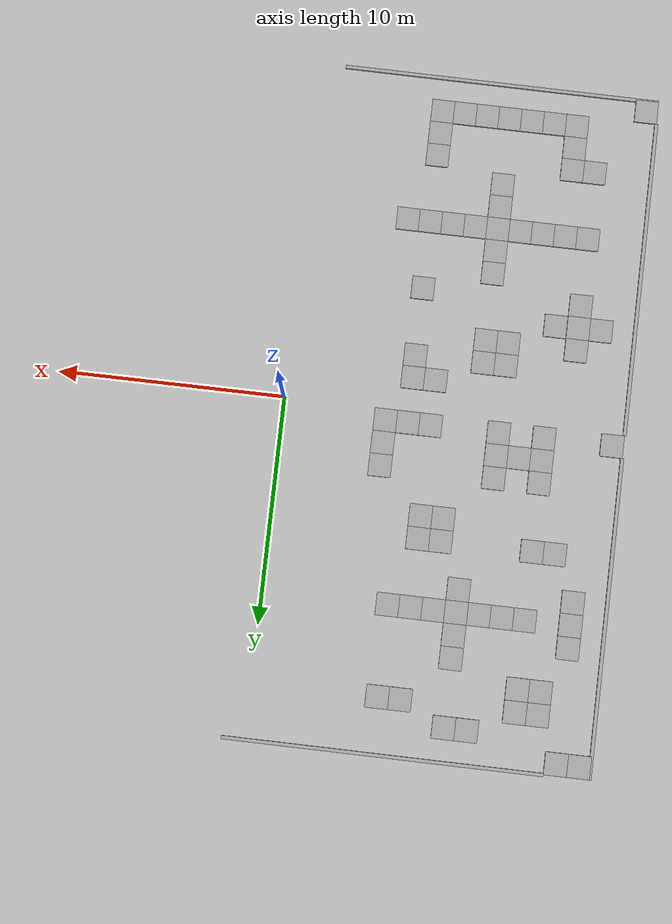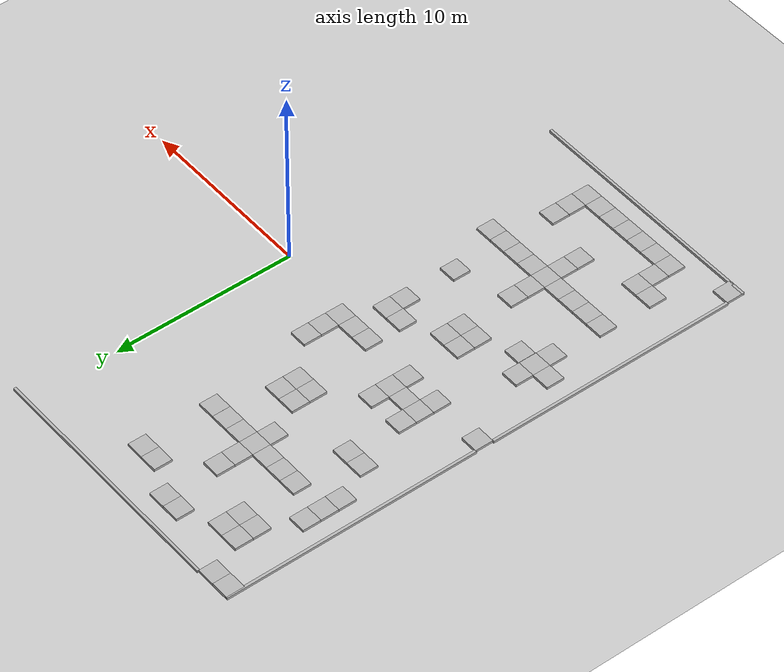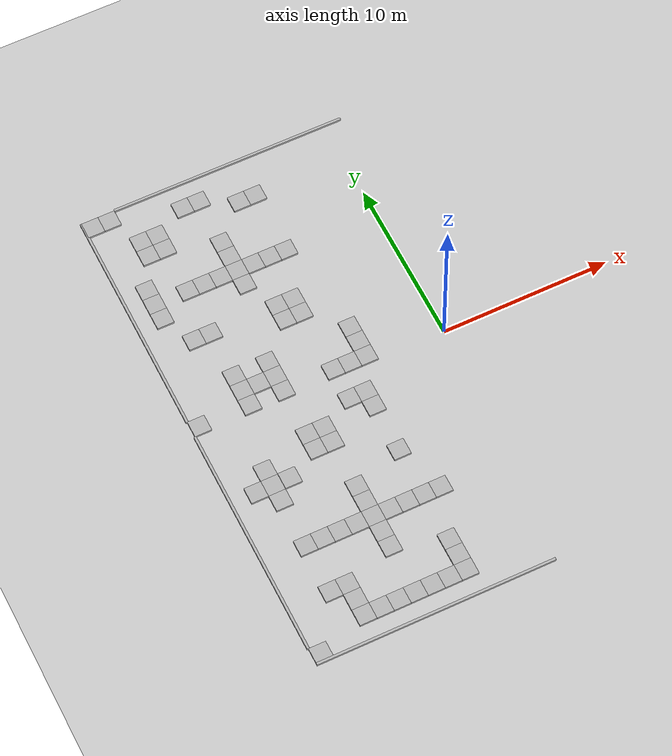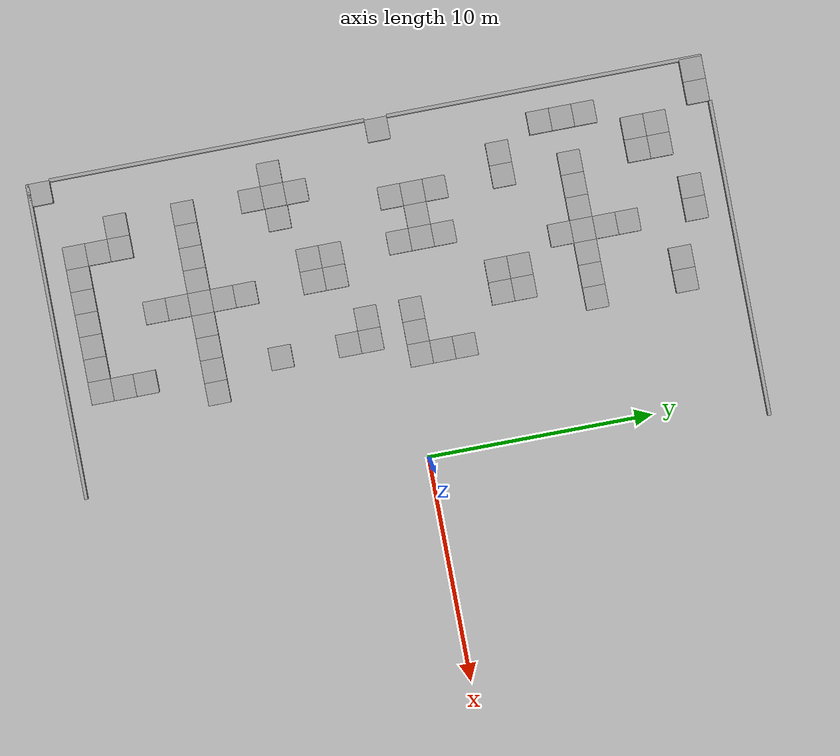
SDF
<sdf version="1.7">
 <world name="default">
  <model name="ground_plane">
   <static>1</static>
   <link name="link">
    <collision name="collision">
     <geometry><plane><normal>0 0 1</normal><size>100 100</size></plane></geometry>
     <surface>
      <contact><collide_bitmask>65535</collide_bitmask></contact>
      <friction><ode><mu>100</mu><mu2>50</mu2></ode></friction>
     </surface>
    </collision>
    <visual name="visual">
     <cast_shadows>0</cast_shadows>
     <geometry><plane><normal>0 0 1</normal><size>100 100</size></plane></geometry>
     <material>
      <script><uri>file://media/materials/scripts/gazebo.material</uri><name>Gazebo/Grey</name></script>
     </material>
    </visual>
   </link>
  </model>
  <model name="concrete_barrier_14m">
   <static>1</static>
   <link name="link">
    <collision name="concrete_barrier_14m_01">
     <pose>-0 0 0.3 0 -0 0</pose>
     <geometry><box><size>14 0.15 0.6</size></box></geometry>
    </collision>
    <visual name="concrete_barrier_14m_visual">
     <geometry><mesh><uri>model://concrete_barrier_14m/meshes/concrete_barrier_14m.dae</uri></mesh></geometry>
    </visual>
   </link>
   <pose>-15 8 -3.1e-05 0 -0 0</pose>
  </model>
  <model name="concrete_barrier_14m_2">
   <static>1</static>
   <link name="link">
    <collision name="concrete_barrier_14m_01">
     <pose>-0 0 0.3 0 -0 0</pose>
     <geometry><box><size>14 0.15 0.6</size></box></geometry>
    </collision>
    <visual name="concrete_barrier_14m_visual">
     <geometry><mesh><uri>model://concrete_barrier_14m/meshes/concrete_barrier_14m.dae</uri></mesh></geometry>
    </visual>
   </link>
   <pose>-15 -7 0 0 -0 0</pose>
  </model>
  <model name="concrete_barrier_14m_5">
   <static>1</static>
   <link name="link">
    <collision name="concrete_barrier_14m_01">
     <pose>-0 0 0.3 0 -0 0</pose>
     <geometry><box><size>14 0.15 0.6</size></box></geometry>
    </collision>
    <visual name="concrete_barrier_14m_visual">
     <geometry><mesh><uri>model://concrete_barrier_14m/meshes/concrete_barrier_14m.dae</uri></mesh></geometry>
    </visual>
   </link>
   <pose>-8 -15 0 0 -0 1.56737</pose>
  </model>
  <model name="concrete_cube_1m_0">
   <static>1</static>
   <link name="link">
    <collision name="concrete_cube_1m">
     <pose>-0 0 0.3 0 -0 0</pose>
     <geometry><box><size>1 1 0.6</size></box></geometry>
    </collision>
    <visual name="concrete_cube_1m_visual">
     <geometry><mesh><uri>model://concrete_cube_1m/meshes/concrete_cube_1m.dae</uri></mesh></geometry>
    </visual>
   </link>
   <pose>-6.5 4.5 0 0 -0 0</pose>
  </model>
  <model name="concrete_cube_1m_3">
   <static>1</static>
   <link name="link">
    <collision name="concrete_cube_1m">
     <pose>-0 0 0.3 0 -0 0</pose>
     <geometry><box><size>1 1 0.6</size></box></geometry>
    </collision>
    <visual name="concrete_cube_1m_visual">
     <geometry><mesh><uri>model://concrete_cube_1m/meshes/concrete_cube_1m.dae</uri></mesh></geometry>
    </visual>
   </link>
   <pose>-4.5 0.5 0 0 -0 0</pose>
  </model>
  <model name="concrete_cube_1m_12">
   <static>1</static>
   <link name="link">
    <collision name="concrete_cube_1m">
     <pose>-0 0 0.3 0 -0 0</pose>
     <geometry><box><size>1 1 0.6</size></box></geometry>
    </collision>
    <visual name="concrete_cube_1m_visual">
     <geometry><mesh><uri>model://concrete_cube_1m/meshes/concrete_cube_1m.dae</uri></mesh></geometry>
    </visual>
   </link>
   <pose>-8.5 -8.5 0 0 -0 0</pose>
  </model>
  <model name="concrete_cube_1m_13">
   <static>1</static>
   <link name="link">
    <collision name="concrete_cube_1m">
     <pose>-0 0 0.3 0 -0 0</pose>
     <geometry><box><size>1 1 0.6</size></box></geometry>
    </collision>
    <visual name="concrete_cube_1m_visual">
     <geometry><mesh><uri>model://concrete_cube_1m/meshes/concrete_cube_1m.dae</uri></mesh></geometry>
    </visual>
   </link>
   <pose>-7.5 -8.5 0 0 -0 0</pose>
  </model>
  <model name="concrete_cube_1m_14">
   <static>1</static>
   <link name="link">
    <collision name="concrete_cube_1m">
     <pose>-0 0 0.3 0 -0 0</pose>
     <geometry><box><size>1 1 0.6</size></box></geometry>
    </collision>
    <visual name="concrete_cube_1m_visual">
     <geometry><mesh><uri>model://concrete_cube_1m/meshes/concrete_cube_1m.dae</uri></mesh></geometry>
    </visual>
   </link>
   <pose>-6.5 -8.5 0 0 -0 0</pose>
  </model>
  <model name="concrete_cube_1m_15">
   <static>1</static>
   <link name="link">
    <collision name="concrete_cube_1m">
     <pose>-0 0 0.3 0 -0 0</pose>
     <geometry><box><size>1 1 0.6</size></box></geometry>
    </collision>
    <visual name="concrete_cube_1m_visual">
     <geometry><mesh><uri>model://concrete_cube_1m/meshes/concrete_cube_1m.dae</uri></mesh></geometry>
    </visual>
   </link>
   <pose>-8.5 -7.5 0 0 -0 0</pose>
  </model>
  <model name="concrete_cube_1m_16">
   <static>1</static>
   <link name="link">
    <collision name="concrete_cube_1m">
     <pose>-0 0 0.3 0 -0 0</pose>
     <geometry><box><size>1 1 0.6</size></box></geometry>
    </collision>
    <visual name="concrete_cube_1m_visual">
     <geometry><mesh><uri>model://concrete_cube_1m/meshes/concrete_cube_1m.dae</uri></mesh></geometry>
    </visual>
   </link>
   <pose>-8.5 -6.5 0 0 -0 0</pose>
  </model>
  <model name="concrete_cube_1m_47">
   <static>1</static>
   <link name="link">
    <collision name="concrete_cube_1m">
     <pose>-0 0 0.3 0 -0 0</pose>
     <geometry><box><size>1 1 0.6</size></box></geometry>
    </collision>
    <visual name="concrete_cube_1m_visual">
     <geometry><mesh><uri>model://concrete_cube_1m/meshes/concrete_cube_1m.dae</uri></mesh></geometry>
    </visual>
   </link>
   <pose>-4.5 1.5 0 0 -0 0</pose>
  </model>
  <model name="concrete_cube_1m_48">
   <static>1</static>
   <link name="link">
    <collision name="concrete_cube_1m">
     <pose>-0 0 0.3 0 -0 0</pose>
     <geometry><box><size>1 1 0.6</size></box></geometry>
    </collision>
    <visual name="concrete_cube_1m_visual">
     <geometry><mesh><uri>model://concrete_cube_1m/meshes/concrete_cube_1m.dae</uri></mesh></geometry>
    </visual>
   </link>
   <pose>-4.5 2.5 0 0 -0 0</pose>
  </model>
  <model name="concrete_cube_1m_49">
   <static>1</static>
   <link name="link">
    <collision name="concrete_cube_1m">
     <pose>-0 0 0.3 0 -0 0</pose>
     <geometry><box><size>1 1 0.6</size></box></geometry>
    </collision>
    <visual name="concrete_cube_1m_visual">
     <geometry><mesh><uri>model://concrete_cube_1m/meshes/concrete_cube_1m.dae</uri></mesh></geometry>
    </visual>
   </link>
   <pose>-5.5 0.5 0 0 -0 0</pose>
  </model>
  <model name="concrete_cube_1m_50">
   <static>1</static>
   <link name="link">
    <collision name="concrete_cube_1m">
     <pose>-0 0 0.3 0 -0 0</pose>
     <geometry><box><size>1 1 0.6</size></box></geometry>
    </collision>
    <visual name="concrete_cube_1m_visual">
     <geometry><mesh><uri>model://concrete_cube_1m/meshes/concrete_cube_1m.dae</uri></mesh></geometry>
    </visual>
   </link>
   <pose>-6.5 0.5 0 0 -0 0</pose>
  </model>
  <model name="concrete_cube_1m_51">
   <static>1</static>
   <link name="link">
    <collision name="concrete_cube_1m">
     <pose>-0 0 0.3 0 -0 0</pose>
     <geometry><box><size>1 1 0.6</size></box></geometry>
    </collision>
    <visual name="concrete_cube_1m_visual">
     <geometry><mesh><uri>model://concrete_cube_1m/meshes/concrete_cube_1m.dae</uri></mesh></geometry>
    </visual>
   </link>
   <pose>-6.5 5.5 0 0 -0 0</pose>
  </model>
  <model name="concrete_cube_1m_52">
   <static>1</static>
   <link name="link">
    <collision name="concrete_cube_1m">
     <pose>-0 0 0.3 0 -0 0</pose>
     <geometry><box><size>1 1 0.6</size></box></geometry>
    </collision>
    <visual name="concrete_cube_1m_visual">
     <geometry><mesh><uri>model://concrete_cube_1m/meshes/concrete_cube_1m.dae</uri></mesh></geometry>
    </visual>
   </link>
   <pose>-7.5 4.5 0 0 -0 0</pose>
  </model>
  <model name="concrete_cube_1m_53">
   <static>1</static>
   <link name="link">
    <collision name="concrete_cube_1m">
     <pose>-0 0 0.3 0 -0 0</pose>
     <geometry><box><size>1 1 0.6</size></box></geometry>
    </collision>
    <visual name="concrete_cube_1m_visual">
     <geometry><mesh><uri>model://concrete_cube_1m/meshes/concrete_cube_1m.dae</uri></mesh></geometry>
    </visual>
   </link>
   <pose>-7.5 5.5 0 0 -0 0</pose>
  </model>
  <model name="concrete_cube_1m_54">
   <static>1</static>
   <link name="link">
    <collision name="concrete_cube_1m">
     <pose>-0 0 0.3 0 -0 0</pose>
     <geometry><box><size>1 1 0.6</size></box></geometry>
    </collision>
    <visual name="concrete_cube_1m_visual">
     <geometry><mesh><uri>model://concrete_cube_1m/meshes/concrete_cube_1m.dae</uri></mesh></geometry>
    </visual>
   </link>
   <pose>-8.5 8.5 0 0 -0 0</pose>
  </model>
  <model name="concrete_cube_1m_55">
   <static>1</static>
   <link name="link">
    <collision name="concrete_cube_1m">
     <pose>-0 0 0.3 0 -0 0</pose>
     <geometry><box><size>1 1 0.6</size></box></geometry>
    </collision>
    <visual name="concrete_cube_1m_visual">
     <geometry><mesh><uri>model://concrete_cube_1m/meshes/concrete_cube_1m.dae</uri></mesh></geometry>
    </visual>
   </link>
   <pose>-8.5 7.5 0 0 -0 0</pose>
  </model>
  <model name="concrete_cube_1m_56">
   <static>1</static>
   <link name="link">
    <collision name="concrete_cube_1m">
     <pose>-0 0 0.3 0 -0 0</pose>
     <geometry><box><size>1 1 0.6</size></box></geometry>
    </collision>
    <visual name="concrete_cube_1m_visual">
     <geometry><mesh><uri>model://concrete_cube_1m/meshes/concrete_cube_1m.dae</uri></mesh></geometry>
    </visual>
   </link>
   <pose>-7.5 8.5 0 0 -0 0</pose>
  </model>
  <model name="concrete_cube_1m_57">
   <static>1</static>
   <link name="link">
    <collision name="concrete_cube_1m">
     <pose>-0 0 0.3 0 -0 0</pose>
     <geometry><box><size>1 1 0.6</size></box></geometry>
    </collision>
    <visual name="concrete_cube_1m_visual">
     <geometry><mesh><uri>model://concrete_cube_1m/meshes/concrete_cube_1m.dae</uri></mesh></geometry>
    </visual>
   </link>
   <pose>-6.50041 8.5 0 0 -0 0</pose>
  </model>
  <model name="concrete_cube_1m_58">
   <static>1</static>
   <link name="link">
    <collision name="concrete_cube_1m">
     <pose>-0 0 0.3 0 -0 0</pose>
     <geometry><box><size>1 1 0.6</size></box></geometry>
    </collision>
    <visual name="concrete_cube_1m_visual">
     <geometry><mesh><uri>model://concrete_cube_1m/meshes/concrete_cube_1m.dae</uri></mesh></geometry>
    </visual>
   </link>
   <pose>-5.5 8.5 0 0 -0 0</pose>
  </model>
  <model name="concrete_cube_1m_60">
   <static>1</static>
   <link name="link">
    <collision name="concrete_cube_1m">
     <pose>-0 0 0.3 0 -0 0</pose>
     <geometry><box><size>1 1 0.6</size></box></geometry>
    </collision>
    <visual name="concrete_cube_1m_visual">
     <geometry><mesh><uri>model://concrete_cube_1m/meshes/concrete_cube_1m.dae</uri></mesh></geometry>
    </visual>
   </link>
   <pose>-9.5 1.5 0 0 -0 0</pose>
  </model>
  <model name="concrete_cube_1m_61">
   <static>1</static>
   <link name="link">
    <collision name="concrete_cube_1m">
     <pose>-0 0 0.3 0 -0 0</pose>
     <geometry><box><size>1 1 0.6</size></box></geometry>
    </collision>
    <visual name="concrete_cube_1m_visual">
     <geometry><mesh><uri>model://concrete_cube_1m/meshes/concrete_cube_1m.dae</uri></mesh></geometry>
    </visual>
   </link>
   <pose>-9.5 2.5 0 0 -0 0</pose>
  </model>
  <model name="concrete_cube_1m_62">
   <static>1</static>
   <link name="link">
    <collision name="concrete_cube_1m">
     <pose>-0 0 0.3 0 -0 0</pose>
     <geometry><box><size>1 1 0.6</size></box></geometry>
    </collision>
    <visual name="concrete_cube_1m_visual">
     <geometry><mesh><uri>model://concrete_cube_1m/meshes/concrete_cube_1m.dae</uri></mesh></geometry>
    </visual>
   </link>
   <pose>-9.5 0.5 0 0 -0 0</pose>
  </model>
  <model name="concrete_cube_1m_88">
   <static>1</static>
   <link name="link">
    <collision name="concrete_cube_1m">
     <pose>-0 0 0.3 0 -0 0</pose>
     <geometry><box><size>1 1 0.6</size></box></geometry>
    </collision>
    <visual name="concrete_cube_1m_visual">
     <geometry><mesh><uri>model://concrete_cube_1m/meshes/concrete_cube_1m.dae</uri></mesh></geometry>
    </visual>
   </link>
   <pose>-5.5 -8.5 0 0 -0 0</pose>
  </model>
  <model name="concrete_cube_1m_89">
   <static>1</static>
   <link name="link">
    <collision name="concrete_cube_1m">
     <pose>-0 0 0.3 0 -0 0</pose>
     <geometry><box><size>1 1 0.6</size></box></geometry>
    </collision>
    <visual name="concrete_cube_1m_visual">
     <geometry><mesh><uri>model://concrete_cube_1m/meshes/concrete_cube_1m.dae</uri></mesh></geometry>
    </visual>
   </link>
   <pose>-4.5 -8.5 0 0 -0 0</pose>
  </model>
  <model name="concrete_cube_1m_92">
   <static>1</static>
   <link name="link">
    <collision name="concrete_cube_1m">
     <pose>-0 0 0.3 0 -0 0</pose>
     <geometry><box><size>1 1 0.6</size></box></geometry>
    </collision>
    <visual name="concrete_cube_1m_visual">
     <geometry><mesh><uri>model://concrete_cube_1m/meshes/concrete_cube_1m.dae</uri></mesh></geometry>
    </visual>
   </link>
   <pose>-9.5 -3.5 0 0 -0 0</pose>
  </model>
  <model name="concrete_cube_1m_93">
   <static>1</static>
   <link name="link">
    <collision name="concrete_cube_1m">
     <pose>-0 0 0.3 0 -0 0</pose>
     <geometry><box><size>1 1 0.6</size></box></geometry>
    </collision>
    <visual name="concrete_cube_1m_visual">
     <geometry><mesh><uri>model://concrete_cube_1m/meshes/concrete_cube_1m.dae</uri></mesh></geometry>
    </visual>
   </link>
   <pose>-8.5 -3.5 0 0 -0 0</pose>
  </model>
  <model name="concrete_cube_1m_94">
   <static>1</static>
   <link name="link">
    <collision name="concrete_cube_1m">
     <pose>-0 0 0.3 0 -0 0</pose>
     <geometry><box><size>1 1 0.6</size></box></geometry>
    </collision>
    <visual name="concrete_cube_1m_visual">
     <geometry><mesh><uri>model://concrete_cube_1m/meshes/concrete_cube_1m.dae</uri></mesh></geometry>
    </visual>
   </link>
   <pose>-8.5 -2.5 0 0 -0 0</pose>
  </model>
  <model name="concrete_cube_1m_95">
   <static>1</static>
   <link name="link">
    <collision name="concrete_cube_1m">
     <pose>-0 0 0.3 0 -0 0</pose>
     <geometry><box><size>1 1 0.6</size></box></geometry>
    </collision>
    <visual name="concrete_cube_1m_visual">
     <geometry><mesh><uri>model://concrete_cube_1m/meshes/concrete_cube_1m.dae</uri></mesh></geometry>
    </visual>
   </link>
   <pose>-9.5 -2.5 0 0 -0 0</pose>
  </model>
  <model name="concrete_cube_1m_96">
   <static>1</static>
   <link name="link">
    <collision name="concrete_cube_1m">
     <pose>-0 0 0.3 0 -0 0</pose>
     <geometry><box><size>1 1 0.6</size></box></geometry>
    </collision>
    <visual name="concrete_cube_1m_visual">
     <geometry><mesh><uri>model://concrete_cube_1m/meshes/concrete_cube_1m.dae</uri></mesh></geometry>
    </visual>
   </link>
   <pose>-5.5 -5.5 0 0 -0 0</pose>
  </model>
  <model name="concrete_cube_1m_100">
   <static>1</static>
   <link name="link">
    <collision name="concrete_cube_1m">
     <pose>-0 0 0.3 0 -0 0</pose>
     <geometry><box><size>1 1 0.6</size></box></geometry>
    </collision>
    <visual name="concrete_cube_1m_visual">
     <geometry><mesh><uri>model://concrete_cube_1m/meshes/concrete_cube_1m.dae</uri></mesh></geometry>
    </visual>
   </link>
   <pose>-6.5 -1.5 0 0 -0 0</pose>
  </model>
  <model name="concrete_cube_1m_101">
   <static>1</static>
   <link name="link">
    <collision name="concrete_cube_1m">
     <pose>-0 0 0.3 0 -0 0</pose>
     <geometry><box><size>1 1 0.6</size></box></geometry>
    </collision>
    <visual name="concrete_cube_1m_visual">
     <geometry><mesh><uri>model://concrete_cube_1m/meshes/concrete_cube_1m.dae</uri></mesh></geometry>
    </visual>
   </link>
   <pose>-5.5 -1.5 0 0 -0 0</pose>
  </model>
  <model name="concrete_cube_1m_102">
   <static>1</static>
   <link name="link">
    <collision name="concrete_cube_1m">
     <pose>-0 0 0.3 0 -0 0</pose>
     <geometry><box><size>1 1 0.6</size></box></geometry>
    </collision>
    <visual name="concrete_cube_1m_visual">
     <geometry><mesh><uri>model://concrete_cube_1m/meshes/concrete_cube_1m.dae</uri></mesh></geometry>
    </visual>
   </link>
   <pose>-5.5 -2.5 0 0 -0 0</pose>
  </model>
  <model name="concrete_barrier_14m_1">
   <static>1</static>
   <link name="link">
    <collision name="concrete_barrier_14m_01">
     <pose>-0 0 0.3 0 -0 0</pose>
     <geometry><box><size>14 0.15 0.6</size></box></geometry>
    </collision>
    <visual name="concrete_barrier_14m_visual">
     <geometry><mesh><uri>model://concrete_barrier_14m/meshes/concrete_barrier_14m.dae</uri></mesh></geometry>
    </visual>
   </link>
   <pose>-6 15 0 0 0 -1.57299</pose>
  </model>
  <model name="concrete_cube_1m_109">
   <static>1</static>
   <link name="link">
    <collision name="concrete_cube_1m">
     <pose>-0 0 0.3 0 -0 0</pose>
     <geometry><box><size>1 1 0.6</size></box></geometry>
    </collision>
    <visual name="concrete_cube_1m_visual">
     <geometry><mesh><uri>model://concrete_cube_1m/meshes/concrete_cube_1m.dae</uri></mesh></geometry>
    </visual>
   </link>
   <pose>-14.5 -14.5 0 0 -0 0</pose>
  </model>
  <model name="concrete_cube_1m_110">
   <static>1</static>
   <link name="link">
    <collision name="concrete_cube_1m">
     <pose>-0 0 0.3 0 -0 0</pose>
     <geometry><box><size>1 1 0.6</size></box></geometry>
    </collision>
    <visual name="concrete_cube_1m_visual">
     <geometry><mesh><uri>model://concrete_cube_1m/meshes/concrete_cube_1m.dae</uri></mesh></geometry>
    </visual>
   </link>
   <pose>-14.5 0.5 0 0 -0 0</pose>
  </model>
  <model name="concrete_cube_1m_111">
   <static>1</static>
   <link name="link">
    <collision name="concrete_cube_1m">
     <pose>-0 0 0.3 0 -0 0</pose>
     <geometry><box><size>1 1 0.6</size></box></geometry>
    </collision>
    <visual name="concrete_cube_1m_visual">
     <geometry><mesh><uri>model://concrete_cube_1m/meshes/concrete_cube_1m.dae</uri></mesh></geometry>
    </visual>
   </link>
   <pose>-14.5 14.5 0 0 -0 0</pose>
  </model>
  <model name="concrete_cube_1m_112">
   <static>1</static>
   <link name="link">
    <collision name="concrete_cube_1m">
     <pose>-0 0 0.3 0 -0 0</pose>
     <geometry><box><size>1 1 0.6</size></box></geometry>
    </collision>
    <visual name="concrete_cube_1m_visual">
     <geometry><mesh><uri>model://concrete_cube_1m/meshes/concrete_cube_1m.dae</uri></mesh></geometry>
    </visual>
   </link>
   <pose>-13.5 14.5 0 0 -0 0</pose>
  </model>
  <model name="concrete_cube_1m_152">
   <static>1</static>
   <link name="link">
    <collision name="concrete_cube_1m">
     <pose>-0 0 0.3 0 -0 0</pose>
     <geometry><box><size>1 1 0.6</size></box></geometry>
    </collision>
    <visual name="concrete_cube_1m_visual">
     <geometry><mesh><uri>model://concrete_cube_1m/meshes/concrete_cube_1m.dae</uri></mesh></geometry>
    </visual>
   </link>
   <pose>-10.5 1.5 0 0 -0 0</pose>
  </model>
  <model name="concrete_cube_1m_153">
   <static>1</static>
   <link name="link">
    <collision name="concrete_cube_1m">
     <pose>-0 0 0.3 0 -0 0</pose>
     <geometry><box><size>1 1 0.6</size></box></geometry>
    </collision>
    <visual name="concrete_cube_1m_visual">
     <geometry><mesh><uri>model://concrete_cube_1m/meshes/concrete_cube_1m.dae</uri></mesh></geometry>
    </visual>
   </link>
   <pose>-11.5 1.5 0 0 -0 0</pose>
  </model>
  <model name="concrete_cube_1m_154">
   <static>1</static>
   <link name="link">
    <collision name="concrete_cube_1m">
     <pose>-0 0 0.3 0 -0 0</pose>
     <geometry><box><size>1 1 0.6</size></box></geometry>
    </collision>
    <visual name="concrete_cube_1m_visual">
     <geometry><mesh><uri>model://concrete_cube_1m/meshes/concrete_cube_1m.dae</uri></mesh></geometry>
    </visual>
   </link>
   <pose>-11.5 2.5 0 0 -0 0</pose>
  </model>
  <model name="concrete_cube_1m_155">
   <static>1</static>
   <link name="link">
    <collision name="concrete_cube_1m">
     <pose>-0 0 0.3 0 -0 0</pose>
     <geometry><box><size>1 1 0.6</size></box></geometry>
    </collision>
    <visual name="concrete_cube_1m_visual">
     <geometry><mesh><uri>model://concrete_cube_1m/meshes/concrete_cube_1m.dae</uri></mesh></geometry>
    </visual>
   </link>
   <pose>-11.5 5.5 0 0 -0 0</pose>
  </model>
  <model name="concrete_cube_1m_156">
   <static>1</static>
   <link name="link">
    <collision name="concrete_cube_1m">
     <pose>-0 0 0.3 0 -0 0</pose>
     <geometry><box><size>1 1 0.6</size></box></geometry>
    </collision>
    <visual name="concrete_cube_1m_visual">
     <geometry><mesh><uri>model://concrete_cube_1m/meshes/concrete_cube_1m.dae</uri></mesh></geometry>
    </visual>
   </link>
   <pose>-8.5 9.5 0 0 -0 0</pose>
  </model>
  <model name="concrete_cube_1m_157">
   <static>1</static>
   <link name="link">
    <collision name="concrete_cube_1m">
     <pose>-0 0 0.3 0 -0 0</pose>
     <geometry><box><size>1 1 0.6</size></box></geometry>
    </collision>
    <visual name="concrete_cube_1m_visual">
     <geometry><mesh><uri>model://concrete_cube_1m/meshes/concrete_cube_1m.dae</uri></mesh></geometry>
    </visual>
   </link>
   <pose>-9.5 8.5 0 0 -0 0</pose>
  </model>
  <model name="concrete_cube_1m_158">
   <static>1</static>
   <link name="link">
    <collision name="concrete_cube_1m">
     <pose>-0 0 0.3 0 -0 0</pose>
     <geometry><box><size>1 1 0.6</size></box></geometry>
    </collision>
    <visual name="concrete_cube_1m_visual">
     <geometry><mesh><uri>model://concrete_cube_1m/meshes/concrete_cube_1m.dae</uri></mesh></geometry>
    </visual>
   </link>
   <pose>-10.5 8.5 0 0 -0 0</pose>
  </model>
  <model name="concrete_cube_1m_159">
   <static>1</static>
   <link name="link">
    <collision name="concrete_cube_1m">
     <pose>-0 0 0.3 0 -0 0</pose>
     <geometry><box><size>1 1 0.6</size></box></geometry>
    </collision>
    <visual name="concrete_cube_1m_visual">
     <geometry><mesh><uri>model://concrete_cube_1m/meshes/concrete_cube_1m.dae</uri></mesh></geometry>
    </visual>
   </link>
   <pose>-11.5 8.5 0 0 -0 0</pose>
  </model>
  <model name="concrete_cube_1m_167">
   <static>1</static>
   <link name="link">
    <collision name="concrete_cube_1m">
     <pose>-0 0 0.3 0 -0 0</pose>
     <geometry><box><size>1 1 0.6</size></box></geometry>
    </collision>
    <visual name="concrete_cube_1m_visual">
     <geometry><mesh><uri>model://concrete_cube_1m/meshes/concrete_cube_1m.dae</uri></mesh></geometry>
    </visual>
   </link>
   <pose>-5.5 12.5 0 0 -0 0</pose>
  </model>
  <model name="concrete_cube_1m_168">
   <static>1</static>
   <link name="link">
    <collision name="concrete_cube_1m">
     <pose>-0 0 0.3 0 -0 0</pose>
     <geometry><box><size>1 1 0.6</size></box></geometry>
    </collision>
    <visual name="concrete_cube_1m_visual">
     <geometry><mesh><uri>model://concrete_cube_1m/meshes/concrete_cube_1m.dae</uri></mesh></geometry>
    </visual>
   </link>
   <pose>-6.5 12.5 0 0 -0 0</pose>
  </model>
  <model name="concrete_cube_1m_169">
   <static>1</static>
   <link name="link">
    <collision name="concrete_cube_1m">
     <pose>-0 0 0.3 0 -0 0</pose>
     <geometry><box><size>1 1 0.6</size></box></geometry>
    </collision>
    <visual name="concrete_cube_1m_visual">
     <geometry><mesh><uri>model://concrete_cube_1m/meshes/concrete_cube_1m.dae</uri></mesh></geometry>
    </visual>
   </link>
   <pose>-12.5 5.5 0 0 -0 0</pose>
  </model>
  <model name="concrete_cube_1m_170">
   <static>1</static>
   <link name="link">
    <collision name="concrete_cube_1m">
     <pose>-0 0 0.3 0 -0 0</pose>
     <geometry><box><size>1 1 0.6</size></box></geometry>
    </collision>
    <visual name="concrete_cube_1m_visual">
     <geometry><mesh><uri>model://concrete_cube_1m/meshes/concrete_cube_1m.dae</uri></mesh></geometry>
    </visual>
   </link>
   <pose>-11.5 11.5 0 0 -0 0</pose>
  </model>
  <model name="concrete_cube_1m_171">
   <static>1</static>
   <link name="link">
    <collision name="concrete_cube_1m">
     <pose>-0 0 0.3 0 -0 0</pose>
     <geometry><box><size>1 1 0.6</size></box></geometry>
    </collision>
    <visual name="concrete_cube_1m_visual">
     <geometry><mesh><uri>model://concrete_cube_1m/meshes/concrete_cube_1m.dae</uri></mesh></geometry>
    </visual>
   </link>
   <pose>-11.5 12.5 0 0 -0 0</pose>
  </model>
  <model name="concrete_cube_1m_172">
   <static>1</static>
   <link name="link">
    <collision name="concrete_cube_1m">
     <pose>-0 0 0.3 0 -0 0</pose>
     <geometry><box><size>1 1 0.6</size></box></geometry>
    </collision>
    <visual name="concrete_cube_1m_visual">
     <geometry><mesh><uri>model://concrete_cube_1m/meshes/concrete_cube_1m.dae</uri></mesh></geometry>
    </visual>
   </link>
   <pose>-12.5 11.5 0 0 -0 0</pose>
  </model>
  <model name="concrete_cube_1m_173">
   <static>1</static>
   <link name="link">
    <collision name="concrete_cube_1m">
     <pose>-0 0 0.3 0 -0 0</pose>
     <geometry><box><size>1 1 0.6</size></box></geometry>
    </collision>
    <visual name="concrete_cube_1m_visual">
     <geometry><mesh><uri>model://concrete_cube_1m/meshes/concrete_cube_1m.dae</uri></mesh></geometry>
    </visual>
   </link>
   <pose>-12.5 12.5 0 0 -0 0</pose>
  </model>
  <model name="concrete_cube_1m_174">
   <static>1</static>
   <link name="link">
    <collision name="concrete_cube_1m">
     <pose>-0 0 0.3 0 -0 0</pose>
     <geometry><box><size>1 1 0.6</size></box></geometry>
    </collision>
    <visual name="concrete_cube_1m_visual">
     <geometry><mesh><uri>model://concrete_cube_1m/meshes/concrete_cube_1m.dae</uri></mesh></geometry>
    </visual>
   </link>
   <pose>-13.5 7.5 0 0 -0 0</pose>
  </model>
  <model name="concrete_cube_1m_175">
   <static>1</static>
   <link name="link">
    <collision name="concrete_cube_1m">
     <pose>-0 0 0.3 0 -0 0</pose>
     <geometry><box><size>1 1 0.6</size></box></geometry>
    </collision>
    <visual name="concrete_cube_1m_visual">
     <geometry><mesh><uri>model://concrete_cube_1m/meshes/concrete_cube_1m.dae</uri></mesh></geometry>
    </visual>
   </link>
   <pose>-13.5 8.5 0 0 -0 0</pose>
  </model>
  <model name="concrete_cube_1m_176">
   <static>1</static>
   <link name="link">
    <collision name="concrete_cube_1m">
     <pose>-0 0 0.3 0 -0 0</pose>
     <geometry><box><size>1 1 0.6</size></box></geometry>
    </collision>
    <visual name="concrete_cube_1m_visual">
     <geometry><mesh><uri>model://concrete_cube_1m/meshes/concrete_cube_1m.dae</uri></mesh></geometry>
    </visual>
   </link>
   <pose>-13.5 9.5 0 0 -0 0</pose>
  </model>
  <model name="concrete_cube_1m_177">
   <static>1</static>
   <link name="link">
    <collision name="concrete_cube_1m">
     <pose>-0 0 0.3 0 -0 0</pose>
     <geometry><box><size>1 1 0.6</size></box></geometry>
    </collision>
    <visual name="concrete_cube_1m_visual">
     <geometry><mesh><uri>model://concrete_cube_1m/meshes/concrete_cube_1m.dae</uri></mesh></geometry>
    </visual>
   </link>
   <pose>-8.5 13.5 0 0 -0 0</pose>
  </model>
  <model name="concrete_cube_1m_178">
   <static>1</static>
   <link name="link">
    <collision name="concrete_cube_1m">
     <pose>-0 0 0.3 0 -0 0</pose>
     <geometry><box><size>1 1 0.6</size></box></geometry>
    </collision>
    <visual name="concrete_cube_1m_visual">
     <geometry><mesh><uri>model://concrete_cube_1m/meshes/concrete_cube_1m.dae</uri></mesh></geometry>
    </visual>
   </link>
   <pose>-9.5 13.5 0 0 -0 0</pose>
  </model>
  <model name="concrete_cube_1m_179">
   <static>1</static>
   <link name="link">
    <collision name="concrete_cube_1m">
     <pose>-0 0 0.3 0 -0 0</pose>
     <geometry><box><size>1 1 0.6</size></box></geometry>
    </collision>
    <visual name="concrete_cube_1m_visual">
     <geometry><mesh><uri>model://concrete_cube_1m/meshes/concrete_cube_1m.dae</uri></mesh></geometry>
    </visual>
   </link>
   <pose>-8.5 10.5 0 0 -0 0</pose>
  </model>
  <model name="concrete_cube_1m_183">
   <static>1</static>
   <link name="link">
    <collision name="concrete_cube_1m">
     <pose>-0 0 0.3 0 -0 0</pose>
     <geometry><box><size>1 1 0.6</size></box></geometry>
    </collision>
    <visual name="concrete_cube_1m_visual">
     <geometry><mesh><uri>model://concrete_cube_1m/meshes/concrete_cube_1m.dae</uri></mesh></geometry>
    </visual>
   </link>
   <pose>-8.5 -9.5 0 0 -0 0</pose>
  </model>
  <model name="concrete_cube_1m_184">
   <static>1</static>
   <link name="link">
    <collision name="concrete_cube_1m">
     <pose>-0 0 0.3 0 -0 0</pose>
     <geometry><box><size>1 1 0.6</size></box></geometry>
    </collision>
    <visual name="concrete_cube_1m_visual">
     <geometry><mesh><uri>model://concrete_cube_1m/meshes/concrete_cube_1m.dae</uri></mesh></geometry>
    </visual>
   </link>
   <pose>-8.5 -10.5 0 0 -0 0</pose>
  </model>
  <model name="concrete_cube_1m_185">
   <static>1</static>
   <link name="link">
    <collision name="concrete_cube_1m">
     <pose>-0 0 0.3 0 -0 0</pose>
     <geometry><box><size>1 1 0.6</size></box></geometry>
    </collision>
    <visual name="concrete_cube_1m_visual">
     <geometry><mesh><uri>model://concrete_cube_1m/meshes/concrete_cube_1m.dae</uri></mesh></geometry>
    </visual>
   </link>
   <pose>-9.5 -8.5 0 0 -0 0</pose>
  </model>
  <model name="concrete_cube_1m_186">
   <static>1</static>
   <link name="link">
    <collision name="concrete_cube_1m">
     <pose>-0 0 0.3 0 -0 0</pose>
     <geometry><box><size>1 1 0.6</size></box></geometry>
    </collision>
    <visual name="concrete_cube_1m_visual">
     <geometry><mesh><uri>model://concrete_cube_1m/meshes/concrete_cube_1m.dae</uri></mesh></geometry>
    </visual>
   </link>
   <pose>-10.5 -8.5 0 0 -0 0</pose>
  </model>
  <model name="concrete_cube_1m_187">
   <static>1</static>
   <link name="link">
    <collision name="concrete_cube_1m">
     <pose>-0 0 0.3 0 -0 0</pose>
     <geometry><box><size>1 1 0.6</size></box></geometry>
    </collision>
    <visual name="concrete_cube_1m_visual">
     <geometry><mesh><uri>model://concrete_cube_1m/meshes/concrete_cube_1m.dae</uri></mesh></geometry>
    </visual>
   </link>
   <pose>-11.5 -8.5 0 0 -0 0</pose>
  </model>
  <model name="concrete_cube_1m_188">
   <static>1</static>
   <link name="link">
    <collision name="concrete_cube_1m">
     <pose>-0 0 0.3 0 -0 0</pose>
     <geometry><box><size>1 1 0.6</size></box></geometry>
    </collision>
    <visual name="concrete_cube_1m_visual">
     <geometry><mesh><uri>model://concrete_cube_1m/meshes/concrete_cube_1m.dae</uri></mesh></geometry>
    </visual>
   </link>
   <pose>-12.5 -8.5 0 0 -0 0</pose>
  </model>
  <model name="concrete_cube_1m_189">
   <static>1</static>
   <link name="link">
    <collision name="concrete_cube_1m">
     <pose>-0 0 0.3 0 -0 0</pose>
     <geometry><box><size>1 1 0.6</size></box></geometry>
    </collision>
    <visual name="concrete_cube_1m_visual">
     <geometry><mesh><uri>model://concrete_cube_1m/meshes/concrete_cube_1m.dae</uri></mesh></geometry>
    </visual>
   </link>
   <pose>-12.5 -5.5 0 0 -0 0</pose>
  </model>
  <model name="concrete_cube_1m_190">
   <static>1</static>
   <link name="link">
    <collision name="concrete_cube_1m">
     <pose>-0 0 0.3 0 -0 0</pose>
     <geometry><box><size>1 1 0.6</size></box></geometry>
    </collision>
    <visual name="concrete_cube_1m_visual">
     <geometry><mesh><uri>model://concrete_cube_1m/meshes/concrete_cube_1m.dae</uri></mesh></geometry>
    </visual>
   </link>
   <pose>-12.5 -4.5 0 0 -0 0</pose>
  </model>
  <model name="concrete_cube_1m_191">
   <static>1</static>
   <link name="link">
    <collision name="concrete_cube_1m">
     <pose>-0 0 0.3 0 -0 0</pose>
     <geometry><box><size>1 1 0.6</size></box></geometry>
    </collision>
    <visual name="concrete_cube_1m_visual">
     <geometry><mesh><uri>model://concrete_cube_1m/meshes/concrete_cube_1m.dae</uri></mesh></geometry>
    </visual>
   </link>
   <pose>-12.5 -3.5 0 0 -0 0</pose>
  </model>
  <model name="concrete_cube_1m_195">
   <static>1</static>
   <link name="link">
    <collision name="concrete_cube_1m">
     <pose>-0 0 0.3 0 -0 0</pose>
     <geometry><box><size>1 1 0.6</size></box></geometry>
    </collision>
    <visual name="concrete_cube_1m_visual">
     <geometry><mesh><uri>model://concrete_cube_1m/meshes/concrete_cube_1m.dae</uri></mesh></geometry>
    </visual>
   </link>
   <pose>-10.5 -13.5 0 0 -0 0</pose>
  </model>
  <model name="concrete_cube_1m_196">
   <static>1</static>
   <link name="link">
    <collision name="concrete_cube_1m">
     <pose>-0 0 0.3 0 -0 0</pose>
     <geometry><box><size>1 1 0.6</size></box></geometry>
    </collision>
    <visual name="concrete_cube_1m_visual">
     <geometry><mesh><uri>model://concrete_cube_1m/meshes/concrete_cube_1m.dae</uri></mesh></geometry>
    </visual>
   </link>
   <pose>-9.5 -13.5 0 0 -0 0</pose>
  </model>
  <model name="concrete_cube_1m_197">
   <static>1</static>
   <link name="link">
    <collision name="concrete_cube_1m">
     <pose>-0 0 0.3 0 -0 0</pose>
     <geometry><box><size>1 1 0.6</size></box></geometry>
    </collision>
    <visual name="concrete_cube_1m_visual">
     <geometry><mesh><uri>model://concrete_cube_1m/meshes/concrete_cube_1m.dae</uri></mesh></geometry>
    </visual>
   </link>
   <pose>-8.5 -13.5 0 0 -0 0</pose>
  </model>
  <model name="concrete_cube_1m_198">
   <static>1</static>
   <link name="link">
    <collision name="concrete_cube_1m">
     <pose>-0 0 0.3 0 -0 0</pose>
     <geometry><box><size>1 1 0.6</size></box></geometry>
    </collision>
    <visual name="concrete_cube_1m_visual">
     <geometry><mesh><uri>model://concrete_cube_1m/meshes/concrete_cube_1m.dae</uri></mesh></geometry>
    </visual>
   </link>
   <pose>-7.5 -13.5 0 0 -0 0</pose>
  </model>
  <model name="concrete_cube_1m_199">
   <static>1</static>
   <link name="link">
    <collision name="concrete_cube_1m">
     <pose>-0 0 0.3 0 -0 0</pose>
     <geometry><box><size>1 1 0.6</size></box></geometry>
    </collision>
    <visual name="concrete_cube_1m_visual">
     <geometry><mesh><uri>model://concrete_cube_1m/meshes/concrete_cube_1m.dae</uri></mesh></geometry>
    </visual>
   </link>
   <pose>-6.5 -13.5 0 0 -0 0</pose>
  </model>
  <model name="concrete_cube_1m_200">
   <static>1</static>
   <link name="link">
    <collision name="concrete_cube_1m">
     <pose>-0 0 0.3 0 -0 0</pose>
     <geometry><box><size>1 1 0.6</size></box></geometry>
    </collision>
    <visual name="concrete_cube_1m_visual">
     <geometry><mesh><uri>model://concrete_cube_1m/meshes/concrete_cube_1m.dae</uri></mesh></geometry>
    </visual>
   </link>
   <pose>-5.5 -13.5 0 0 -0 0</pose>
  </model>
  <model name="concrete_cube_1m_201">
   <static>1</static>
   <link name="link">
    <collision name="concrete_cube_1m">
     <pose>-0 0 0.3 0 -0 0</pose>
     <geometry><box><size>1 1 0.6</size></box></geometry>
    </collision>
    <visual name="concrete_cube_1m_visual">
     <geometry><mesh><uri>model://concrete_cube_1m/meshes/concrete_cube_1m.dae</uri></mesh></geometry>
    </visual>
   </link>
   <pose>-5.5 -12.5 0 0 -0 0</pose>
  </model>
  <model name="concrete_cube_1m_202">
   <static>1</static>
   <link name="link">
    <collision name="concrete_cube_1m">
     <pose>-0 0 0.3 0 -0 0</pose>
     <geometry><box><size>1 1 0.6</size></box></geometry>
    </collision>
    <visual name="concrete_cube_1m_visual">
     <geometry><mesh><uri>model://concrete_cube_1m/meshes/concrete_cube_1m.dae</uri></mesh></geometry>
    </visual>
   </link>
   <pose>-5.5 -11.5 0 0 -0 0</pose>
  </model>
  <model name="concrete_cube_1m_203">
   <static>1</static>
   <link name="link">
    <collision name="concrete_cube_1m">
     <pose>-0 0 0.3 0 -0 0</pose>
     <geometry><box><size>1 1 0.6</size></box></geometry>
    </collision>
    <visual name="concrete_cube_1m_visual">
     <geometry><mesh><uri>model://concrete_cube_1m/meshes/concrete_cube_1m.dae</uri></mesh></geometry>
    </visual>
   </link>
   <pose>-11.5 -13.5 0 0 -0 0</pose>
  </model>
  <model name="concrete_cube_1m_204">
   <static>1</static>
   <link name="link">
    <collision name="concrete_cube_1m">
     <pose>-0 0 0.3 0 -0 0</pose>
     <geometry><box><size>1 1 0.6</size></box></geometry>
    </collision>
    <visual name="concrete_cube_1m_visual">
     <geometry><mesh><uri>model://concrete_cube_1m/meshes/concrete_cube_1m.dae</uri></mesh></geometry>
    </visual>
   </link>
   <pose>-11.5 -12.5 0 0 -0 0</pose>
  </model>
  <model name="concrete_cube_1m_205">
   <static>1</static>
   <link name="link">
    <collision name="concrete_cube_1m">
     <pose>-0 0 0.3 0 -0 0</pose>
     <geometry><box><size>1 1 0.6</size></box></geometry>
    </collision>
    <visual name="concrete_cube_1m_visual">
     <geometry><mesh><uri>model://concrete_cube_1m/meshes/concrete_cube_1m.dae</uri></mesh></geometry>
    </visual>
   </link>
   <pose>-11.5 -11.5 0 0 -0 0</pose>
  </model>
  <model name="concrete_cube_1m_206">
   <static>1</static>
   <link name="link">
    <collision name="concrete_cube_1m">
     <pose>-0 0 0.3 0 -0 0</pose>
     <geometry><box><size>1 1 0.6</size></box></geometry>
    </collision>
    <visual name="concrete_cube_1m_visual">
     <geometry><mesh><uri>model://concrete_cube_1m/meshes/concrete_cube_1m.dae</uri></mesh></geometry>
    </visual>
   </link>
   <pose>-12.5 -11.5 0 0 -0 0</pose>
  </model>
  <model name="concrete_cube_1m_208">
   <static>1</static>
   <link name="link">
    <collision name="concrete_cube_1m">
     <pose>-0 0 0.3 0 -0 0</pose>
     <geometry><box><size>1 1 0.6</size></box></geometry>
    </collision>
    <visual name="concrete_cube_1m_visual">
     <geometry><mesh><uri>model://concrete_cube_1m/meshes/concrete_cube_1m.dae</uri></mesh></geometry>
    </visual>
   </link>
   <pose>-11.4847 -4.47764 0 0 -0 0</pose>
  </model>
  <model name="concrete_cube_1m_209">
   <static>1</static>
   <link name="link">
    <collision name="concrete_cube_1m">
     <pose>-0 0 0.3 0 -0 0</pose>
     <geometry><box><size>1 1 0.6</size></box></geometry>
    </collision>
    <visual name="concrete_cube_1m_visual">
     <geometry><mesh><uri>model://concrete_cube_1m/meshes/concrete_cube_1m.dae</uri></mesh></geometry>
    </visual>
   </link>
   <pose>-13.5 -4.5 0 0 -0 0</pose>
  </model>
  <model name="concrete_cube_1m_210">
   <static>1</static>
   <link name="link">
    <collision name="concrete_cube_1m">
     <pose>-0 0 0.3 0 -0 0</pose>
     <geometry><box><size>1 1 0.6</size></box></geometry>
    </collision>
    <visual name="concrete_cube_1m_visual">
     <geometry><mesh><uri>model://concrete_cube_1m/meshes/concrete_cube_1m.dae</uri></mesh></geometry>
    </visual>
   </link>
   <pose>-11.5 0.5 0 0 -0 0</pose>
  </model>
 </world>
</sdf>
